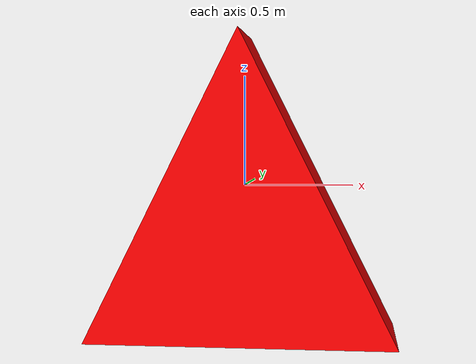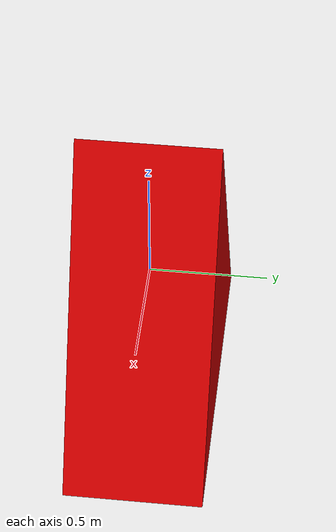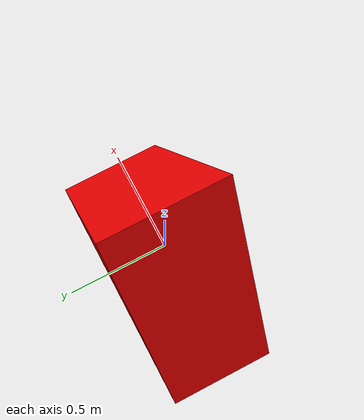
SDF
<?xml version='1.0' encoding='utf-8'?>
<sdf version="1.9">
  <model name="target_red_triangle_bedroom1">
    <static>true</static>
    <link name="target">
      <collision name="collision">
        <geometry>
          <mesh>
            <uri>model://target_red_triangle_bedroom1/meshes/triangle.dae</uri>
            <scale>4 4 4</scale>
          </mesh>
        </geometry>
      </collision>
      <visual name="visual">
        <geometry>
          <mesh>
            <uri>model://target_red_triangle_bedroom1/meshes/triangle.dae</uri>
            <scale>4 4 4</scale>
          </mesh>
        </geometry>
        <material>
          <ambient>1 0 0 1</ambient>
          <diffuse>1 0 0 1</diffuse>
          <specular>0 0 0 1</specular>
          <pbr>
            <metal>
              <metalness>0</metalness>
              <roughness>1</roughness>
            </metal>
          </pbr>
        </material>
      </visual>
    </link>
  </model>
</sdf>
